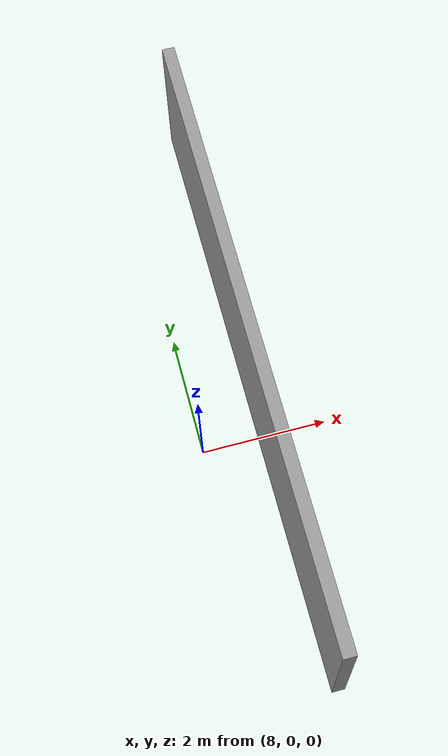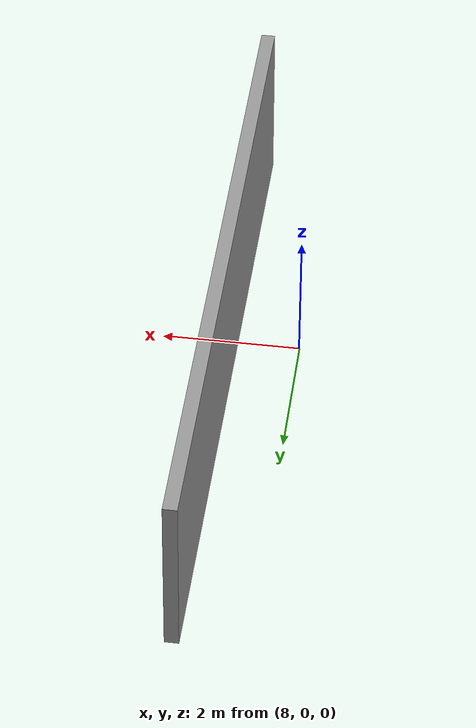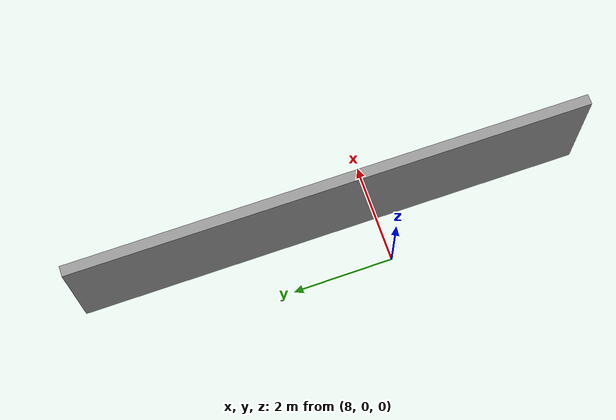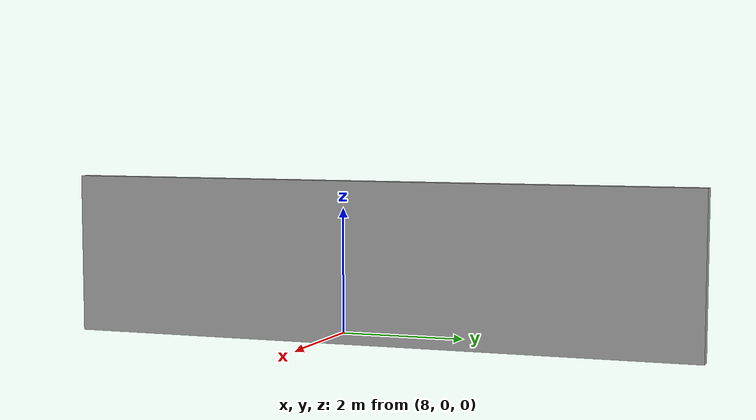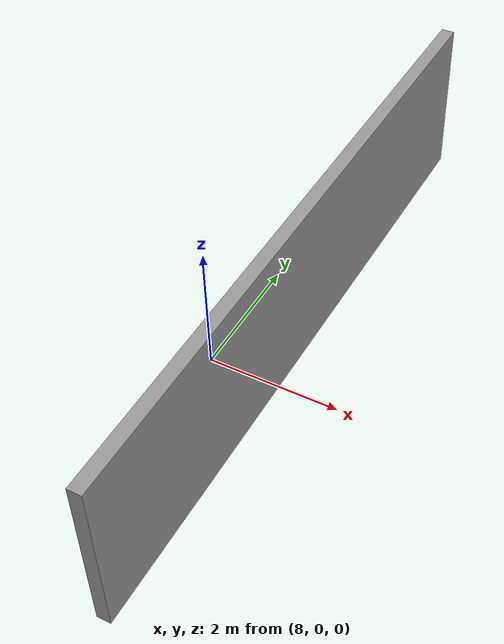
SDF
<?xml version='1.0'?>
<sdf version='1.4'>
  <model name='wall2'>
    <link name='Wall_24'>
      <collision name='Wall_24_Collision'>
        <geometry>
          <box>
            <size>10 0.2 2.5</size>
          </box>
        </geometry>
        <pose>0 0 1.25 0 -0 0</pose>
      </collision>
      <visual name='Wall_24_Visual'>
        <pose>0 0 1.25 0 -0 0</pose>
        <geometry>
          <box>
            <size>10 0.2 2.5</size>
          </box>
        </geometry>
        <material>
          <script>
            <uri>file://media/materials/scripts/gazebo.material</uri>
            <name>Gazebo/Grey</name>
          </script>
        </material>
      </visual>
      <velocity_decay>
        <linear>0</linear>
        <angular>0</angular>
      </velocity_decay>
      <pose>9 0.9 0 0 -0 1.5708</pose>
    </link>
    <static>1</static>
  </model>
</sdf>
